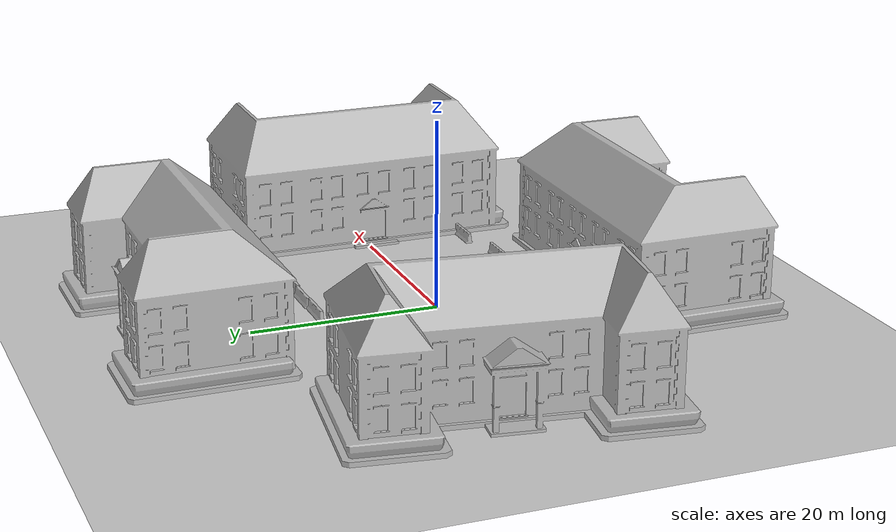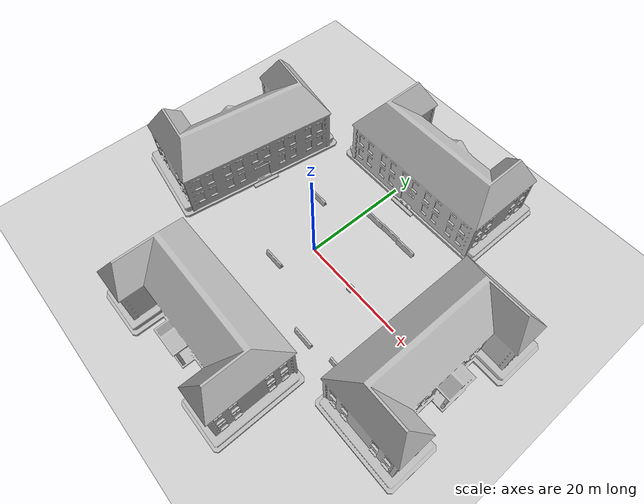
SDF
<sdf version="1.6">
 <world name="default">
  <light name="sun" type="directional">
   <pose>0 0 10 0 -0 0</pose>
   <diffuse>0.8 0.8 0.8 1</diffuse>
   <specular>0.1 0.1 0.1 1</specular>
   <attenuation>
    <range>1000</range>
    <constant>0.9</constant>
    <linear>0.01</linear>
    <quadratic>0.001</quadratic>
   </attenuation>
   <direction>-0.5 0.5 -1</direction>
  </light>
  <model name="ground_plane">
   <static>1</static>
   <link name="link">
    <collision name="collision">
     <geometry><plane><normal>0 0 1</normal><size>100 100</size></plane></geometry>
     <surface><friction><ode><mu>100</mu><mu2>50</mu2></ode></friction></surface>
    </collision>
    <visual name="visual">
     <cast_shadows>0</cast_shadows>
     <geometry><plane><normal>0 0 1</normal><size>100 100</size></plane></geometry>
     <material>
      <script><uri>file://media/materials/scripts/gazebo.material</uri><name>Gazebo/Grey</name></script>
     </material>
    </visual>
   </link>
  </model>
  <gravity>0 0 -9.8</gravity>
  <magnetic_field>6e-06 2.3e-05 -4.2e-05</magnetic_field>
  <atmosphere type="adiabatic"/>
  <physics name="default_physics" default="0" type="ode">
   <max_step_size>0.001</max_step_size>
   <real_time_factor>1</real_time_factor>
   <real_time_update_rate>1000</real_time_update_rate>
  </physics>
  <scene><ambient>0.4 0.4 0.4 1</ambient><background>0.7 0.7 0.7 1</background><shadows>1</shadows></scene>
  <spherical_coordinates>
   <surface_model>EARTH_WGS84</surface_model>
   <latitude_deg>0</latitude_deg>
   <longitude_deg>0</longitude_deg>
   <elevation>0</elevation>
   <heading_deg>0</heading_deg>
  </spherical_coordinates>
  <model name="school">
   <static>1</static>
   <link name="link">
    <collision name="collision">
     <geometry><mesh><uri>model://school/meshes/school.dae</uri><scale>1 1 1</scale></mesh></geometry>
    </collision>
    <visual name="visual">
     <geometry><mesh><uri>model://school/meshes/school.dae</uri><scale>1 1 1</scale></mesh></geometry>
    </visual>
   </link>
   <pose>0.656699 -21.4836 0 0 -0 0</pose>
  </model>
  <model name="school_clone">
   <static>1</static>
   <link name="link">
    <collision name="collision">
     <geometry><mesh><uri>model://school/meshes/school.dae</uri><scale>1 1 1</scale></mesh></geometry>
    </collision>
    <visual name="visual">
     <geometry><mesh><uri>model://school/meshes/school.dae</uri><scale>1 1 1</scale></mesh></geometry>
    </visual>
   </link>
   <pose>26.2019 -0.686214 0 0 -0 1.5708</pose>
  </model>
  <model name="school_clone_clone">
   <static>1</static>
   <link name="link">
    <collision name="collision">
     <geometry><mesh><uri>model://school/meshes/school.dae</uri><scale>1 1 1</scale></mesh></geometry>
    </collision>
    <visual name="visual">
     <geometry><mesh><uri>model://school/meshes/school.dae</uri><scale>1 1 1</scale></mesh></geometry>
    </visual>
   </link>
   <pose>-23.6315 3.41853 0 0 0 -1.70981</pose>
  </model>
  <model name="school_clone_clone_0">
   <static>1</static>
   <link name="link">
    <collision name="collision">
     <geometry><mesh><uri>model://school/meshes/school.dae</uri><scale>1 1 1</scale></mesh></geometry>
    </collision>
    <visual name="visual">
     <geometry><mesh><uri>model://school/meshes/school.dae</uri><scale>1 1 1</scale></mesh></geometry>
    </visual>
   </link>
   <pose>3.4994 24.2794 0 0 0 -3.14159</pose>
  </model>
  <model name="unit_box">
   <pose>9.93662 -0.311278 0.499995 0 1e-05 0</pose>
   <link name="link">
    <inertial>
     <mass>1</mass>
     <inertia>
      <ixx>0.166667</ixx>
      <ixy>0</ixy>
      <ixz>0</ixz>
      <iyy>0.166667</iyy>
      <iyz>0</iyz>
      <izz>0.166667</izz>
     </inertia>
    </inertial>
    <collision name="collision"><geometry><box><size>1 1 1</size></box></geometry></collision>
    <visual name="visual">
     <geometry><box><size>1 1 1</size></box></geometry>
     <material>
      <script><name>Gazebo/Grey</name><uri>file://media/materials/scripts/gazebo.material</uri></script>
     </material>
    </visual>
   </link>
  </model>
  <model name="jersey_barrier">
   <static>1</static>
   <link name="link">
    <visual name="visual">
     <geometry><mesh><uri>model://jersey_barrier/meshes/jersey_barrier.dae</uri></mesh></geometry>
    </visual>
    <collision name="upright">
     <pose>0 0 0.5715 0 -0 0</pose>
     <geometry><box><size>4.06542 0.3063 1.143</size></box></geometry>
    </collision>
    <collision name="base">
     <pose>0 0 0.032258 0 -0 0</pose>
     <geometry><box><size>4.06542 0.8107 0.064516</size></box></geometry>
    </collision>
    <collision name="base2">
     <pose>0 0 0.1 0 -0 0</pose>
     <geometry><box><size>4.06542 0.65 0.1</size></box></geometry>
    </collision>
    <collision name="base3">
     <pose>0 0 0.2 0 -0 0</pose>
     <geometry><box><size>4.06542 0.5 0.1</size></box></geometry>
    </collision>
    <collision name="left-angle">
     <pose>0 -0.224 0.2401 0.9 -0 0</pose>
     <geometry><box><size>4.06542 0.5 0.064516</size></box></geometry>
    </collision>
    <collision name="right-angle">
     <pose>0 0.224 0.2401 -0.9 0 0</pose>
     <geometry><box><size>4.06542 0.5 0.064516</size></box></geometry>
    </collision>
   </link>
   <pose>2.41391 12.3357 0 0 -0 0</pose>
  </model>
  <model name="jersey_barrier_clone">
   <static>1</static>
   <link name="link">
    <visual name="visual">
     <geometry><mesh><uri>model://jersey_barrier/meshes/jersey_barrier.dae</uri></mesh></geometry>
    </visual>
    <collision name="upright">
     <pose>0 0 0.5715 0 -0 0</pose>
     <geometry><box><size>4.06542 0.3063 1.143</size></box></geometry>
    </collision>
    <collision name="base">
     <pose>0 0 0.032258 0 -0 0</pose>
     <geometry><box><size>4.06542 0.8107 0.064516</size></box></geometry>
    </collision>
    <collision name="base2">
     <pose>0 0 0.1 0 -0 0</pose>
     <geometry><box><size>4.06542 0.65 0.1</size></box></geometry>
    </collision>
    <collision name="base3">
     <pose>0 0 0.2 0 -0 0</pose>
     <geometry><box><size>4.06542 0.5 0.1</size></box></geometry>
    </collision>
    <collision name="left-angle">
     <pose>0 -0.224 0.2401 0.9 -0 0</pose>
     <geometry><box><size>4.06542 0.5 0.064516</size></box></geometry>
    </collision>
    <collision name="right-angle">
     <pose>0 0.224 0.2401 -0.9 0 0</pose>
     <geometry><box><size>4.06542 0.5 0.064516</size></box></geometry>
    </collision>
   </link>
   <pose>6.41894 12.4387 0 0 -0 0</pose>
  </model>
  <model name="jersey_barrier_clone_0">
   <static>1</static>
   <link name="link">
    <visual name="visual">
     <geometry><mesh><uri>model://jersey_barrier/meshes/jersey_barrier.dae</uri></mesh></geometry>
    </visual>
    <collision name="upright">
     <pose>0 0 0.5715 0 -0 0</pose>
     <geometry><box><size>4.06542 0.3063 1.143</size></box></geometry>
    </collision>
    <collision name="base">
     <pose>0 0 0.032258 0 -0 0</pose>
     <geometry><box><size>4.06542 0.8107 0.064516</size></box></geometry>
    </collision>
    <collision name="base2">
     <pose>0 0 0.1 0 -0 0</pose>
     <geometry><box><size>4.06542 0.65 0.1</size></box></geometry>
    </collision>
    <collision name="base3">
     <pose>0 0 0.2 0 -0 0</pose>
     <geometry><box><size>4.06542 0.5 0.1</size></box></geometry>
    </collision>
    <collision name="left-angle">
     <pose>0 -0.224 0.2401 0.9 -0 0</pose>
     <geometry><box><size>4.06542 0.5 0.064516</size></box></geometry>
    </collision>
    <collision name="right-angle">
     <pose>0 0.224 0.2401 -0.9 0 0</pose>
     <geometry><box><size>4.06542 0.5 0.064516</size></box></geometry>
    </collision>
   </link>
   <pose>10.3107 12.2744 0 0 -0 0</pose>
  </model>
  <model name="jersey_barrier_clone_1">
   <static>1</static>
   <link name="link">
    <visual name="visual">
     <geometry><mesh><uri>model://jersey_barrier/meshes/jersey_barrier.dae</uri></mesh></geometry>
    </visual>
    <collision name="upright">
     <pose>0 0 0.5715 0 -0 0</pose>
     <geometry><box><size>4.06542 0.3063 1.143</size></box></geometry>
    </collision>
    <collision name="base">
     <pose>0 0 0.032258 0 -0 0</pose>
     <geometry><box><size>4.06542 0.8107 0.064516</size></box></geometry>
    </collision>
    <collision name="base2">
     <pose>0 0 0.1 0 -0 0</pose>
     <geometry><box><size>4.06542 0.65 0.1</size></box></geometry>
    </collision>
    <collision name="base3">
     <pose>0 0 0.2 0 -0 0</pose>
     <geometry><box><size>4.06542 0.5 0.1</size></box></geometry>
    </collision>
    <collision name="left-angle">
     <pose>0 -0.224 0.2401 0.9 -0 0</pose>
     <geometry><box><size>4.06542 0.5 0.064516</size></box></geometry>
    </collision>
    <collision name="right-angle">
     <pose>0 0.224 0.2401 -0.9 0 0</pose>
     <geometry><box><size>4.06542 0.5 0.064516</size></box></geometry>
    </collision>
   </link>
   <pose>19.082 -10.7673 0 0 -0 0</pose>
  </model>
  <model name="jersey_barrier_clone_2">
   <static>1</static>
   <link name="link">
    <visual name="visual">
     <geometry><mesh><uri>model://jersey_barrier/meshes/jersey_barrier.dae</uri></mesh></geometry>
    </visual>
    <collision name="upright">
     <pose>0 0 0.5715 0 -0 0</pose>
     <geometry><box><size>4.06542 0.3063 1.143</size></box></geometry>
    </collision>
    <collision name="base">
     <pose>0 0 0.032258 0 -0 0</pose>
     <geometry><box><size>4.06542 0.8107 0.064516</size></box></geometry>
    </collision>
    <collision name="base2">
     <pose>0 0 0.1 0 -0 0</pose>
     <geometry><box><size>4.06542 0.65 0.1</size></box></geometry>
    </collision>
    <collision name="base3">
     <pose>0 0 0.2 0 -0 0</pose>
     <geometry><box><size>4.06542 0.5 0.1</size></box></geometry>
    </collision>
    <collision name="left-angle">
     <pose>0 -0.224 0.2401 0.9 -0 0</pose>
     <geometry><box><size>4.06542 0.5 0.064516</size></box></geometry>
    </collision>
    <collision name="right-angle">
     <pose>0 0.224 0.2401 -0.9 0 0</pose>
     <geometry><box><size>4.06542 0.5 0.064516</size></box></geometry>
    </collision>
   </link>
   <pose>11.594 -11.9014 0 0 -0 0</pose>
  </model>
  <model name="jersey_barrier_clone_3">
   <static>1</static>
   <link name="link">
    <visual name="visual">
     <geometry><mesh><uri>model://jersey_barrier/meshes/jersey_barrier.dae</uri></mesh></geometry>
    </visual>
    <collision name="upright">
     <pose>0 0 0.5715 0 -0 0</pose>
     <geometry><box><size>4.06542 0.3063 1.143</size></box></geometry>
    </collision>
    <collision name="base">
     <pose>0 0 0.032258 0 -0 0</pose>
     <geometry><box><size>4.06542 0.8107 0.064516</size></box></geometry>
    </collision>
    <collision name="base2">
     <pose>0 0 0.1 0 -0 0</pose>
     <geometry><box><size>4.06542 0.65 0.1</size></box></geometry>
    </collision>
    <collision name="base3">
     <pose>0 0 0.2 0 -0 0</pose>
     <geometry><box><size>4.06542 0.5 0.1</size></box></geometry>
    </collision>
    <collision name="left-angle">
     <pose>0 -0.224 0.2401 0.9 -0 0</pose>
     <geometry><box><size>4.06542 0.5 0.064516</size></box></geometry>
    </collision>
    <collision name="right-angle">
     <pose>0 0.224 0.2401 -0.9 0 0</pose>
     <geometry><box><size>4.06542 0.5 0.064516</size></box></geometry>
    </collision>
   </link>
   <pose>-2.90368 -6.67148 0 0 -0 0</pose>
  </model>
  <model name="jersey_barrier_clone_4">
   <static>1</static>
   <link name="link">
    <visual name="visual">
     <geometry><mesh><uri>model://jersey_barrier/meshes/jersey_barrier.dae</uri></mesh></geometry>
    </visual>
    <collision name="upright">
     <pose>0 0 0.5715 0 -0 0</pose>
     <geometry><box><size>4.06542 0.3063 1.143</size></box></geometry>
    </collision>
    <collision name="base">
     <pose>0 0 0.032258 0 -0 0</pose>
     <geometry><box><size>4.06542 0.8107 0.064516</size></box></geometry>
    </collision>
    <collision name="base2">
     <pose>0 0 0.1 0 -0 0</pose>
     <geometry><box><size>4.06542 0.65 0.1</size></box></geometry>
    </collision>
    <collision name="base3">
     <pose>0 0 0.2 0 -0 0</pose>
     <geometry><box><size>4.06542 0.5 0.1</size></box></geometry>
    </collision>
    <collision name="left-angle">
     <pose>0 -0.224 0.2401 0.9 -0 0</pose>
     <geometry><box><size>4.06542 0.5 0.064516</size></box></geometry>
    </collision>
    <collision name="right-angle">
     <pose>0 0.224 0.2401 -0.9 0 0</pose>
     <geometry><box><size>4.06542 0.5 0.064516</size></box></geometry>
    </collision>
   </link>
   <pose>-8.05332 7.5535 0 0 -0 0</pose>
  </model>
  <model name="jersey_barrier_clone_5">
   <static>1</static>
   <link name="link">
    <visual name="visual">
     <geometry><mesh><uri>model://jersey_barrier/meshes/jersey_barrier.dae</uri></mesh></geometry>
    </visual>
    <collision name="upright">
     <pose>0 0 0.5715 0 -0 0</pose>
     <geometry><box><size>4.06542 0.3063 1.143</size></box></geometry>
    </collision>
    <collision name="base">
     <pose>0 0 0.032258 0 -0 0</pose>
     <geometry><box><size>4.06542 0.8107 0.064516</size></box></geometry>
    </collision>
    <collision name="base2">
     <pose>0 0 0.1 0 -0 0</pose>
     <geometry><box><size>4.06542 0.65 0.1</size></box></geometry>
    </collision>
    <collision name="base3">
     <pose>0 0 0.2 0 -0 0</pose>
     <geometry><box><size>4.06542 0.5 0.1</size></box></geometry>
    </collision>
    <collision name="left-angle">
     <pose>0 -0.224 0.2401 0.9 -0 0</pose>
     <geometry><box><size>4.06542 0.5 0.064516</size></box></geometry>
    </collision>
    <collision name="right-angle">
     <pose>0 0.224 0.2401 -0.9 0 0</pose>
     <geometry><box><size>4.06542 0.5 0.064516</size></box></geometry>
    </collision>
   </link>
   <pose>23.2131 1.19807 0 0 -0 0</pose>
  </model>
 </world>
</sdf>
